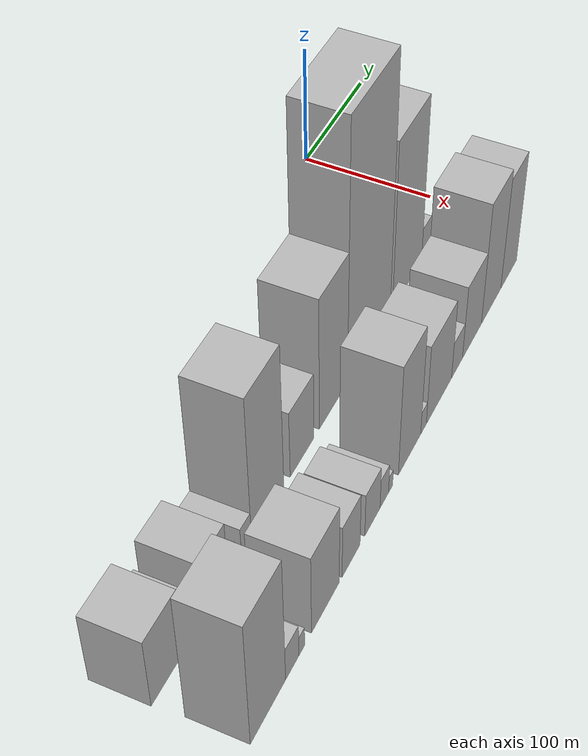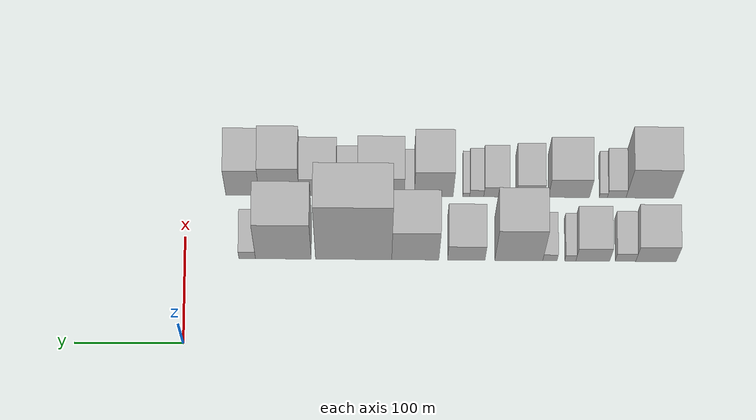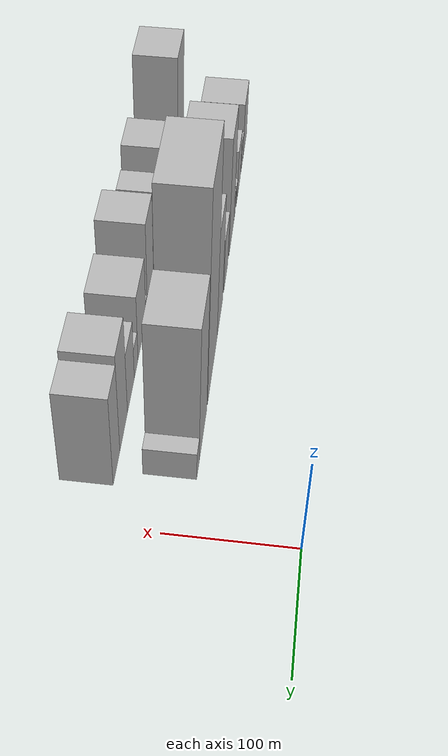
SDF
<sdf version="1.6">
 <world name="default">
  <model name="building_1">
   <static>1</static>
   <pose>100.0000 -434.3449 0 0.000000 0.000000 0.000000</pose>
   <link name="link">
    <pose>0 0 31.50 0 0 0</pose>
    <collision name="collision"><geometry><box><size>40.0000 37.3102 63.0000</size></box></geometry></collision>
    <visual name="visual">
     <cast_shadows>0</cast_shadows>
     <geometry><box><size>40.0000 37.3102 63.0000</size></box></geometry>
     <material>
      <script>
       <uri>model://HANNAS_wall/materials/scripts</uri>
       <uri>model://HANNAS_wall/materials/textures</uri>
       <name>vrc/HANNAS_wall</name>
      </script>
     </material>
    </visual>
   </link>
  </model>
  <model name="building_2">
   <static>1</static>
   <pose>100.0000 -406.1732 0 0.000000 0.000000 0.000000</pose>
   <link name="link">
    <pose>0 0 16.50 0 0 0</pose>
    <collision name="collision"><geometry><box><size>40.0000 19.0332 33.0000</size></box></geometry></collision>
    <visual name="visual">
     <cast_shadows>0</cast_shadows>
     <geometry><box><size>40.0000 19.0332 33.0000</size></box></geometry>
     <material>
      <script>
       <uri>model://HANNAS_wall/materials/scripts</uri>
       <uri>model://HANNAS_wall/materials/textures</uri>
       <name>vrc/HANNAS_wall</name>
      </script>
     </material>
    </visual>
   </link>
  </model>
  <model name="building_3">
   <static>1</static>
   <pose>100.0000 -376.0543 0 0.000000 0.000000 0.000000</pose>
   <link name="link">
    <pose>0 0 27.00 0 0 0</pose>
    <collision name="collision"><geometry><box><size>40.0000 31.2046 54.0000</size></box></geometry></collision>
    <visual name="visual">
     <cast_shadows>0</cast_shadows>
     <geometry><box><size>40.0000 31.2046 54.0000</size></box></geometry>
     <material>
      <script>
       <uri>model://HANNAS_wall/materials/scripts</uri>
       <uri>model://HANNAS_wall/materials/textures</uri>
       <name>vrc/HANNAS_wall</name>
      </script>
     </material>
    </visual>
   </link>
  </model>
  <model name="building_4">
   <static>1</static>
   <pose>100.0000 -355.2624 0 0.000000 0.000000 0.000000</pose>
   <link name="link">
    <pose>0 0 12.00 0 0 0</pose>
    <collision name="collision"><geometry><box><size>40.0000 10.3794 24.0000</size></box></geometry></collision>
    <visual name="visual">
     <cast_shadows>0</cast_shadows>
     <geometry><box><size>40.0000 10.3794 24.0000</size></box></geometry>
     <material>
      <script>
       <uri>model://HANNAS_wall/materials/scripts</uri>
       <uri>model://HANNAS_wall/materials/textures</uri>
       <name>vrc/HANNAS_wall</name>
      </script>
     </material>
    </visual>
   </link>
  </model>
  <model name="building_5">
   <static>1</static>
   <pose>100.0000 -336.4891 0 0.000000 0.000000 0.000000</pose>
   <link name="link">
    <pose>0 0 13.50 0 0 0</pose>
    <collision name="collision"><geometry><box><size>40.0000 13.1672 27.0000</size></box></geometry></collision>
    <visual name="visual">
     <cast_shadows>0</cast_shadows>
     <geometry><box><size>40.0000 13.1672 27.0000</size></box></geometry>
     <material>
      <script>
       <uri>model://HANNAS_wall/materials/scripts</uri>
       <uri>model://HANNAS_wall/materials/textures</uri>
       <name>vrc/HANNAS_wall</name>
      </script>
     </material>
    </visual>
   </link>
  </model>
  <model name="building_6">
   <static>1</static>
   <pose>100.0000 -307.7441 0 0.000000 0.000000 0.000000</pose>
   <link name="link">
    <pose>0 0 64.50 0 0 0</pose>
    <collision name="collision"><geometry><box><size>40.0000 44.3227 129.0000</size></box></geometry></collision>
    <visual name="visual">
     <cast_shadows>0</cast_shadows>
     <geometry><box><size>40.0000 44.3227 129.0000</size></box></geometry>
     <material>
      <script>
       <uri>model://HANNAS_wall/materials/scripts</uri>
       <uri>model://HANNAS_wall/materials/textures</uri>
       <name>vrc/HANNAS_wall</name>
      </script>
     </material>
    </visual>
   </link>
  </model>
  <model name="building_7">
   <static>1</static>
   <pose>100.0000 -259.3126 0 0.000000 0.000000 0.000000</pose>
   <link name="link">
    <pose>0 0 30.00 0 0 0</pose>
    <collision name="collision"><geometry><box><size>40.0000 34.5403 60.0000</size></box></geometry></collision>
    <visual name="visual">
     <cast_shadows>0</cast_shadows>
     <geometry><box><size>40.0000 34.5403 60.0000</size></box></geometry>
     <material>
      <script>
       <uri>model://HANNAS_wall/materials/scripts</uri>
       <uri>model://HANNAS_wall/materials/textures</uri>
       <name>vrc/HANNAS_wall</name>
      </script>
     </material>
    </visual>
   </link>
  </model>
  <model name="building_8">
   <static>1</static>
   <pose>100.0000 -212.3424 0 0.000000 0.000000 0.000000</pose>
   <link name="link">
    <pose>0 0 58.50 0 0 0</pose>
    <collision name="collision"><geometry><box><size>40.0000 43.4000 117.0000</size></box></geometry></collision>
    <visual name="visual">
     <cast_shadows>0</cast_shadows>
     <geometry><box><size>40.0000 43.4000 117.0000</size></box></geometry>
     <material>
      <script>
       <uri>model://HANNAS_wall/materials/scripts</uri>
       <uri>model://HANNAS_wall/materials/textures</uri>
       <name>vrc/HANNAS_wall</name>
      </script>
     </material>
    </visual>
   </link>
  </model>
  <model name="building_9">
   <static>1</static>
   <pose>100.0000 -155.5357 0 0.000000 0.000000 0.000000</pose>
   <link name="link">
    <pose>0 0 111.00 0 0 0</pose>
    <collision name="collision"><geometry><box><size>40.0000 70.2134 222.0000</size></box></geometry></collision>
    <visual name="visual">
     <cast_shadows>0</cast_shadows>
     <geometry><box><size>40.0000 70.2134 222.0000</size></box></geometry>
     <material>
      <script>
       <uri>model://HANNAS_wall/materials/scripts</uri>
       <uri>model://HANNAS_wall/materials/textures</uri>
       <name>vrc/HANNAS_wall</name>
      </script>
     </material>
    </visual>
   </link>
  </model>
  <model name="building_10">
   <static>1</static>
   <pose>100.0000 -90.7002 0 0.000000 0.000000 0.000000</pose>
   <link name="link">
    <pose>0 0 73.50 0 0 0</pose>
    <collision name="collision"><geometry><box><size>40.0000 51.4577 147.0000</size></box></geometry></collision>
    <visual name="visual">
     <cast_shadows>0</cast_shadows>
     <geometry><box><size>40.0000 51.4577 147.0000</size></box></geometry>
     <material>
      <script>
       <uri>model://HANNAS_wall/materials/scripts</uri>
       <uri>model://HANNAS_wall/materials/textures</uri>
       <name>vrc/HANNAS_wall</name>
      </script>
     </material>
    </visual>
   </link>
  </model>
  <model name="building_11">
   <static>1</static>
   <pose>100.0000 -57.3428 0 0.000000 0.000000 0.000000</pose>
   <link name="link">
    <pose>0 0 15.00 0 0 0</pose>
    <collision name="collision"><geometry><box><size>40.0000 15.2571 30.0000</size></box></geometry></collision>
    <visual name="visual">
     <cast_shadows>0</cast_shadows>
     <geometry><box><size>40.0000 15.2571 30.0000</size></box></geometry>
     <material>
      <script>
       <uri>model://HANNAS_wall/materials/scripts</uri>
       <uri>model://HANNAS_wall/materials/textures</uri>
       <name>vrc/HANNAS_wall</name>
      </script>
     </material>
    </visual>
   </link>
  </model>
  <model name="building_27">
   <static>1</static>
   <pose>160.0000 -429.0702 0 0.000000 0.000000 0.000000</pose>
   <link name="link">
    <pose>0 0 57.00 0 0 0</pose>
    <collision name="collision"><geometry><box><size>40.0000 43.8596 114.0000</size></box></geometry></collision>
    <visual name="visual">
     <cast_shadows>0</cast_shadows>
     <geometry><box><size>40.0000 43.8596 114.0000</size></box></geometry>
     <material>
      <script>
       <uri>model://HANNAS_wall/materials/scripts</uri>
       <uri>model://HANNAS_wall/materials/textures</uri>
       <name>vrc/HANNAS_wall</name>
      </script>
     </material>
    </visual>
   </link>
  </model>
  <model name="building_28">
   <static>1</static>
   <pose>160.0000 -398.5017 0 0.000000 0.000000 0.000000</pose>
   <link name="link">
    <pose>0 0 15.00 0 0 0</pose>
    <collision name="collision"><geometry><box><size>40.0000 17.2774 30.0000</size></box></geometry></collision>
    <visual name="visual">
     <cast_shadows>0</cast_shadows>
     <geometry><box><size>40.0000 17.2774 30.0000</size></box></geometry>
     <material>
      <script>
       <uri>model://HANNAS_wall/materials/scripts</uri>
       <uri>model://HANNAS_wall/materials/textures</uri>
       <name>vrc/HANNAS_wall</name>
      </script>
     </material>
    </visual>
   </link>
  </model>
  <model name="building_29">
   <static>1</static>
   <pose>160.0000 -386.0668 0 0.000000 0.000000 0.000000</pose>
   <link name="link">
    <pose>0 0 9.00 0 0 0</pose>
    <collision name="collision"><geometry><box><size>40.0000 7.5922 18.0000</size></box></geometry></collision>
    <visual name="visual">
     <cast_shadows>0</cast_shadows>
     <geometry><box><size>40.0000 7.5922 18.0000</size></box></geometry>
     <material>
      <script>
       <uri>model://HANNAS_wall/materials/scripts</uri>
       <uri>model://HANNAS_wall/materials/textures</uri>
       <name>vrc/HANNAS_wall</name>
      </script>
     </material>
    </visual>
   </link>
  </model>
  <model name="building_30">
   <static>1</static>
   <pose>160.0000 -354.2220 0 0.000000 0.000000 0.000000</pose>
   <link name="link">
    <pose>0 0 36.00 0 0 0</pose>
    <collision name="collision"><geometry><box><size>40.0000 38.0973 72.0000</size></box></geometry></collision>
    <visual name="visual">
     <cast_shadows>0</cast_shadows>
     <geometry><box><size>40.0000 38.0973 72.0000</size></box></geometry>
     <material>
      <script>
       <uri>model://HANNAS_wall/materials/scripts</uri>
       <uri>model://HANNAS_wall/materials/textures</uri>
       <name>vrc/HANNAS_wall</name>
      </script>
     </material>
    </visual>
   </link>
  </model>
  <model name="building_31">
   <static>1</static>
   <pose>160.0000 -318.2275 0 0.000000 0.000000 0.000000</pose>
   <link name="link">
    <pose>0 0 24.00 0 0 0</pose>
    <collision name="collision"><geometry><box><size>40.0000 25.8917 48.0000</size></box></geometry></collision>
    <visual name="visual">
     <cast_shadows>0</cast_shadows>
     <geometry><box><size>40.0000 25.8917 48.0000</size></box></geometry>
     <material>
      <script>
       <uri>model://HANNAS_wall/materials/scripts</uri>
       <uri>model://HANNAS_wall/materials/textures</uri>
       <name>vrc/HANNAS_wall</name>
      </script>
     </material>
    </visual>
   </link>
  </model>
  <model name="building_32">
   <static>1</static>
   <pose>160.0000 -286.8710 0 0.000000 0.000000 0.000000</pose>
   <link name="link">
    <pose>0 0 19.50 0 0 0</pose>
    <collision name="collision"><geometry><box><size>40.0000 22.8214 39.0000</size></box></geometry></collision>
    <visual name="visual">
     <cast_shadows>0</cast_shadows>
     <geometry><box><size>40.0000 22.8214 39.0000</size></box></geometry>
     <material>
      <script>
       <uri>model://HANNAS_wall/materials/scripts</uri>
       <uri>model://HANNAS_wall/materials/textures</uri>
       <name>vrc/HANNAS_wall</name>
      </script>
     </material>
    </visual>
   </link>
  </model>
  <model name="building_33">
   <static>1</static>
   <pose>160.0000 -268.9408 0 0.000000 0.000000 0.000000</pose>
   <link name="link">
    <pose>0 0 13.50 0 0 0</pose>
    <collision name="collision"><geometry><box><size>40.0000 13.0389 27.0000</size></box></geometry></collision>
    <visual name="visual">
     <cast_shadows>0</cast_shadows>
     <geometry><box><size>40.0000 13.0389 27.0000</size></box></geometry>
     <material>
      <script>
       <uri>model://HANNAS_wall/materials/scripts</uri>
       <uri>model://HANNAS_wall/materials/textures</uri>
       <name>vrc/HANNAS_wall</name>
      </script>
     </material>
    </visual>
   </link>
  </model>
  <model name="building_34">
   <static>1</static>
   <pose>160.0000 -259.2228 0 0.000000 0.000000 0.000000</pose>
   <link name="link">
    <pose>0 0 7.50 0 0 0</pose>
    <collision name="collision"><geometry><box><size>40.0000 6.3972 15.0000</size></box></geometry></collision>
    <visual name="visual">
     <cast_shadows>0</cast_shadows>
     <geometry><box><size>40.0000 6.3972 15.0000</size></box></geometry>
     <material>
      <script>
       <uri>model://HANNAS_wall/materials/scripts</uri>
       <uri>model://HANNAS_wall/materials/textures</uri>
       <name>vrc/HANNAS_wall</name>
      </script>
     </material>
    </visual>
   </link>
  </model>
  <model name="building_35">
   <static>1</static>
   <pose>160.0000 -229.0551 0 0.000000 0.000000 0.000000</pose>
   <link name="link">
    <pose>0 0 49.50 0 0 0</pose>
    <collision name="collision"><geometry><box><size>40.0000 35.9382 99.0000</size></box></geometry></collision>
    <visual name="visual">
     <cast_shadows>0</cast_shadows>
     <geometry><box><size>40.0000 35.9382 99.0000</size></box></geometry>
     <material>
      <script>
       <uri>model://HANNAS_wall/materials/scripts</uri>
       <uri>model://HANNAS_wall/materials/textures</uri>
       <name>vrc/HANNAS_wall</name>
      </script>
     </material>
    </visual>
   </link>
  </model>
  <model name="building_36">
   <static>1</static>
   <pose>160.0000 -206.4405 0 0.000000 0.000000 0.000000</pose>
   <link name="link">
    <pose>0 0 10.50 0 0 0</pose>
    <collision name="collision"><geometry><box><size>40.0000 9.2910 21.0000</size></box></geometry></collision>
    <visual name="visual">
     <cast_shadows>0</cast_shadows>
     <geometry><box><size>40.0000 9.2910 21.0000</size></box></geometry>
     <material>
      <script>
       <uri>model://HANNAS_wall/materials/scripts</uri>
       <uri>model://HANNAS_wall/materials/textures</uri>
       <name>vrc/HANNAS_wall</name>
      </script>
     </material>
    </visual>
   </link>
  </model>
  <model name="building_37">
   <static>1</static>
   <pose>160.0000 -180.2395 0 0.000000 0.000000 0.000000</pose>
   <link name="link">
    <pose>0 0 36.00 0 0 0</pose>
    <collision name="collision"><geometry><box><size>40.0000 43.1109 72.0000</size></box></geometry></collision>
    <visual name="visual">
     <cast_shadows>0</cast_shadows>
     <geometry><box><size>40.0000 43.1109 72.0000</size></box></geometry>
     <material>
      <script>
       <uri>model://HANNAS_wall/materials/scripts</uri>
       <uri>model://HANNAS_wall/materials/textures</uri>
       <name>vrc/HANNAS_wall</name>
      </script>
     </material>
    </visual>
   </link>
  </model>
  <model name="building_38">
   <static>1</static>
   <pose>160.0000 -149.0144 0 0.000000 0.000000 0.000000</pose>
   <link name="link">
    <pose>0 0 16.50 0 0 0</pose>
    <collision name="collision"><geometry><box><size>40.0000 19.3393 33.0000</size></box></geometry></collision>
    <visual name="visual">
     <cast_shadows>0</cast_shadows>
     <geometry><box><size>40.0000 19.3393 33.0000</size></box></geometry>
     <material>
      <script>
       <uri>model://HANNAS_wall/materials/scripts</uri>
       <uri>model://HANNAS_wall/materials/textures</uri>
       <name>vrc/HANNAS_wall</name>
      </script>
     </material>
    </visual>
   </link>
  </model>
  <model name="building_39">
   <static>1</static>
   <pose>160.0000 -122.0366 0 0.000000 0.000000 0.000000</pose>
   <link name="link">
    <pose>0 0 33.00 0 0 0</pose>
    <collision name="collision"><geometry><box><size>40.0000 34.6164 66.0000</size></box></geometry></collision>
    <visual name="visual">
     <cast_shadows>0</cast_shadows>
     <geometry><box><size>40.0000 34.6164 66.0000</size></box></geometry>
     <material>
      <script>
       <uri>model://HANNAS_wall/materials/scripts</uri>
       <uri>model://HANNAS_wall/materials/textures</uri>
       <name>vrc/HANNAS_wall</name>
      </script>
     </material>
    </visual>
   </link>
  </model>
  <model name="building_40">
   <static>1</static>
   <pose>160.0000 -86.2194 0 0.000000 0.000000 0.000000</pose>
   <link name="link">
    <pose>0 0 54.00 0 0 0</pose>
    <collision name="collision"><geometry><box><size>40.0000 37.0180 108.0000</size></box></geometry></collision>
    <visual name="visual">
     <cast_shadows>0</cast_shadows>
     <geometry><box><size>40.0000 37.0180 108.0000</size></box></geometry>
     <material>
      <script>
       <uri>model://HANNAS_wall/materials/scripts</uri>
       <uri>model://HANNAS_wall/materials/textures</uri>
       <name>vrc/HANNAS_wall</name>
      </script>
     </material>
    </visual>
   </link>
  </model>
  <model name="building_41">
   <static>1</static>
   <pose>160.0000 -52.2447 0 0.000000 0.000000 0.000000</pose>
   <link name="link">
    <pose>0 0 49.50 0 0 0</pose>
    <collision name="collision"><geometry><box><size>40.0000 30.9315 99.0000</size></box></geometry></collision>
    <visual name="visual">
     <cast_shadows>0</cast_shadows>
     <geometry><box><size>40.0000 30.9315 99.0000</size></box></geometry>
     <material>
      <script>
       <uri>model://HANNAS_wall/materials/scripts</uri>
       <uri>model://HANNAS_wall/materials/textures</uri>
       <name>vrc/HANNAS_wall</name>
      </script>
     </material>
    </visual>
   </link>
  </model>
 </world>
</sdf>
